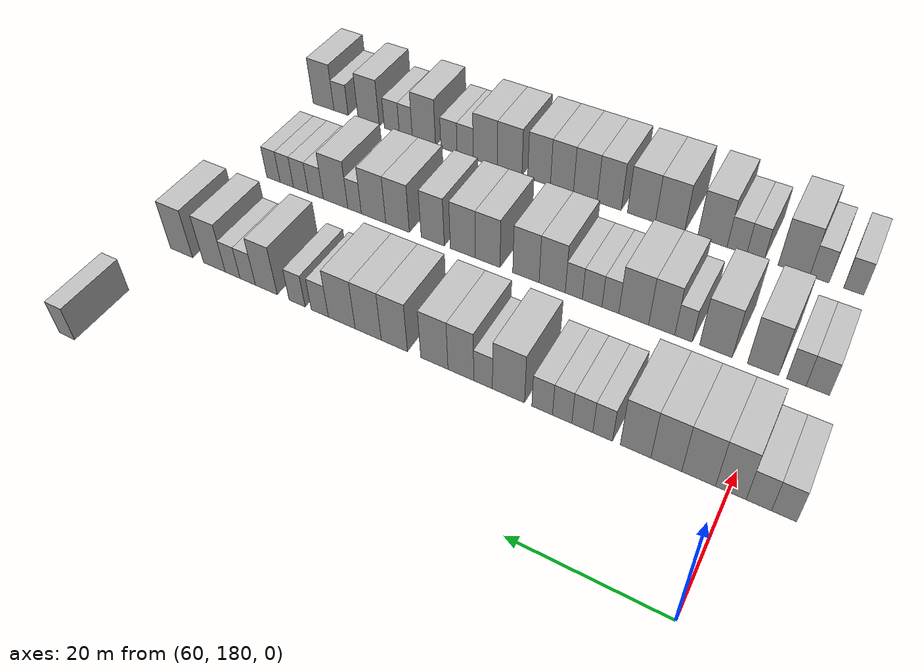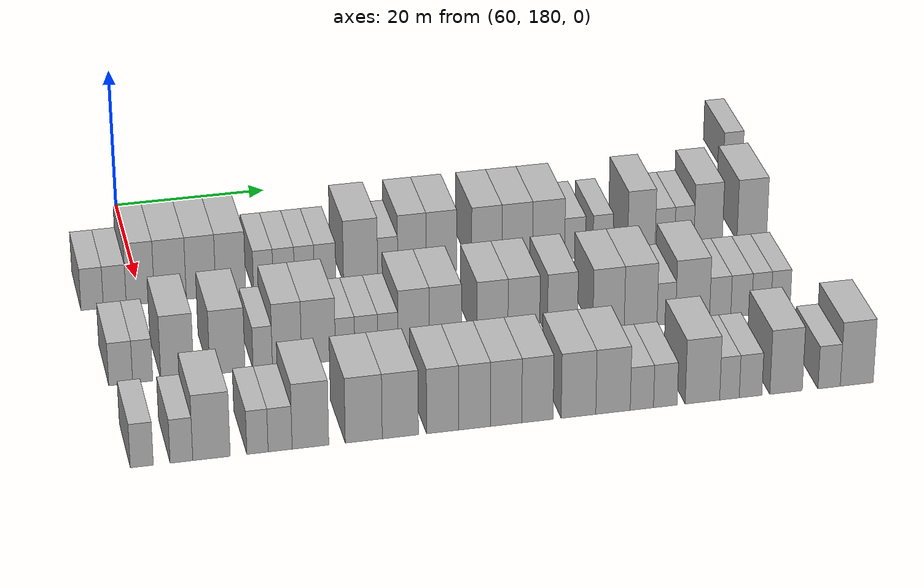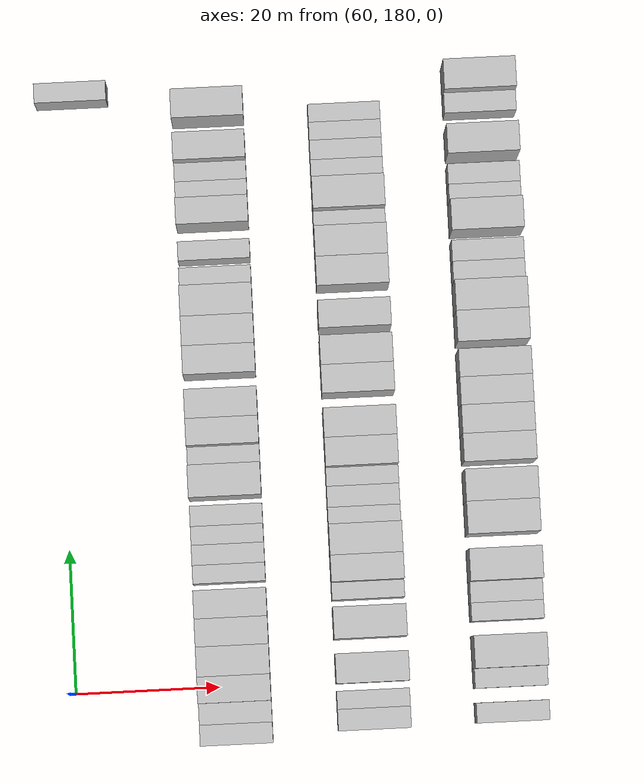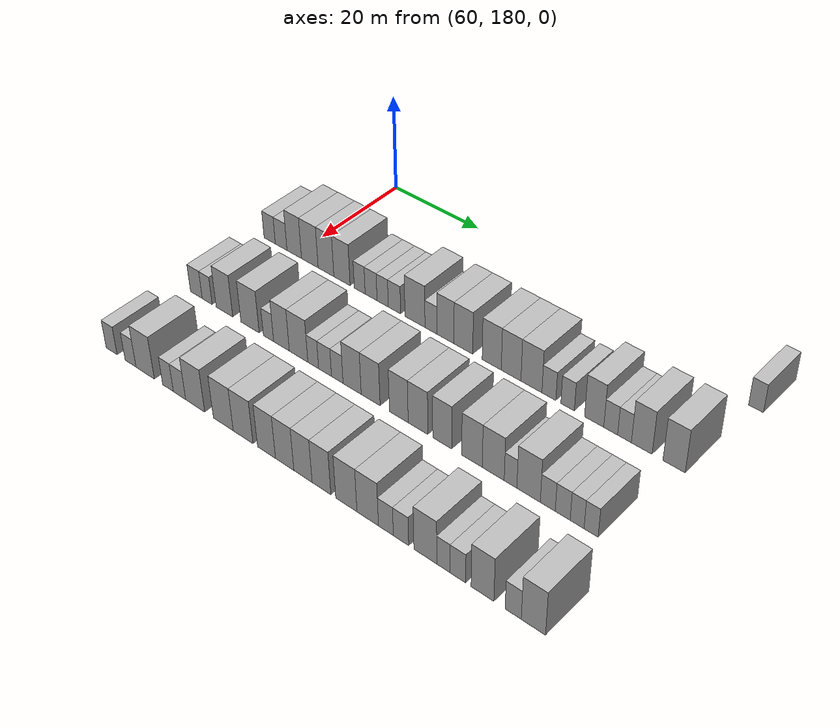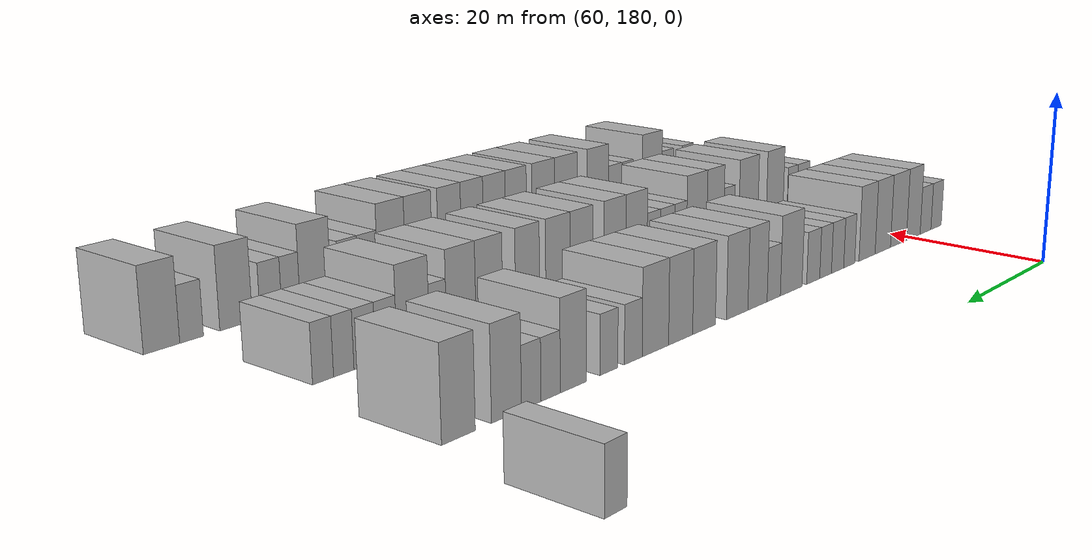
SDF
<sdf version="1.6">
 <world name="default">
  <model name="building_495">
   <static>1</static>
   <pose>63.0000 263.5589 0 0.000000 0.000000 0.000000</pose>
   <link name="link">
    <pose>0 0 3.00 0 0 0</pose>
    <collision name="collision"><geometry><box><size>10.0000 2.7407 6.0000</size></box></geometry></collision>
    <visual name="visual">
     <cast_shadows>0</cast_shadows>
     <geometry><box><size>10.0000 2.7407 6.0000</size></box></geometry>
     <material>
      <script>
       <uri>model://HANNAS_wall/materials/scripts</uri>
       <uri>model://HANNAS_wall/materials/textures</uri>
       <name>vrc/HANNAS_wall</name>
      </script>
     </material>
    </visual>
   </link>
  </model>
  <model name="building_655">
   <static>1</static>
   <pose>82.0000 173.5368 0 0.000000 0.000000 0.000000</pose>
   <link name="link">
    <pose>0 0 3.00 0 0 0</pose>
    <collision name="collision"><geometry><box><size>10.0000 2.8638 6.0000</size></box></geometry></collision>
    <visual name="visual">
     <cast_shadows>0</cast_shadows>
     <geometry><box><size>10.0000 2.8638 6.0000</size></box></geometry>
     <material>
      <script>
       <uri>model://HANNAS_wall/materials/scripts</uri>
       <uri>model://HANNAS_wall/materials/textures</uri>
       <name>vrc/HANNAS_wall</name>
      </script>
     </material>
    </visual>
   </link>
  </model>
  <model name="building_656">
   <static>1</static>
   <pose>82.0000 176.4345 0 0.000000 0.000000 0.000000</pose>
   <link name="link">
    <pose>0 0 3.00 0 0 0</pose>
    <collision name="collision"><geometry><box><size>10.0000 2.9318 6.0000</size></box></geometry></collision>
    <visual name="visual">
     <cast_shadows>0</cast_shadows>
     <geometry><box><size>10.0000 2.9318 6.0000</size></box></geometry>
     <material>
      <script>
       <uri>model://HANNAS_wall/materials/scripts</uri>
       <uri>model://HANNAS_wall/materials/textures</uri>
       <name>vrc/HANNAS_wall</name>
      </script>
     </material>
    </visual>
   </link>
  </model>
  <model name="building_657">
   <static>1</static>
   <pose>82.0000 179.7109 0 0.000000 0.000000 0.000000</pose>
   <link name="link">
    <pose>0 0 4.50 0 0 0</pose>
    <collision name="collision"><geometry><box><size>10.0000 3.6210 9.0000</size></box></geometry></collision>
    <visual name="visual">
     <cast_shadows>0</cast_shadows>
     <geometry><box><size>10.0000 3.6210 9.0000</size></box></geometry>
     <material>
      <script>
       <uri>model://HANNAS_wall/materials/scripts</uri>
       <uri>model://HANNAS_wall/materials/textures</uri>
       <name>vrc/HANNAS_wall</name>
      </script>
     </material>
    </visual>
   </link>
  </model>
  <model name="building_658">
   <static>1</static>
   <pose>82.0000 183.5634 0 0.000000 0.000000 0.000000</pose>
   <link name="link">
    <pose>0 0 4.50 0 0 0</pose>
    <collision name="collision"><geometry><box><size>10.0000 4.0839 9.0000</size></box></geometry></collision>
    <visual name="visual">
     <cast_shadows>0</cast_shadows>
     <geometry><box><size>10.0000 4.0839 9.0000</size></box></geometry>
     <material>
      <script>
       <uri>model://HANNAS_wall/materials/scripts</uri>
       <uri>model://HANNAS_wall/materials/textures</uri>
       <name>vrc/HANNAS_wall</name>
      </script>
     </material>
    </visual>
   </link>
  </model>
  <model name="building_659">
   <static>1</static>
   <pose>82.0000 187.5143 0 0.000000 0.000000 0.000000</pose>
   <link name="link">
    <pose>0 0 4.50 0 0 0</pose>
    <collision name="collision"><geometry><box><size>10.0000 3.8178 9.0000</size></box></geometry></collision>
    <visual name="visual">
     <cast_shadows>0</cast_shadows>
     <geometry><box><size>10.0000 3.8178 9.0000</size></box></geometry>
     <material>
      <script>
       <uri>model://HANNAS_wall/materials/scripts</uri>
       <uri>model://HANNAS_wall/materials/textures</uri>
       <name>vrc/HANNAS_wall</name>
      </script>
     </material>
    </visual>
   </link>
  </model>
  <model name="building_660">
   <static>1</static>
   <pose>82.0000 191.3612 0 0.000000 0.000000 0.000000</pose>
   <link name="link">
    <pose>0 0 4.50 0 0 0</pose>
    <collision name="collision"><geometry><box><size>10.0000 3.8759 9.0000</size></box></geometry></collision>
    <visual name="visual">
     <cast_shadows>0</cast_shadows>
     <geometry><box><size>10.0000 3.8759 9.0000</size></box></geometry>
     <material>
      <script>
       <uri>model://HANNAS_wall/materials/scripts</uri>
       <uri>model://HANNAS_wall/materials/textures</uri>
       <name>vrc/HANNAS_wall</name>
      </script>
     </material>
    </visual>
   </link>
  </model>
  <model name="building_661">
   <static>1</static>
   <pose>82.0000 195.5746 0 0.000000 0.000000 0.000000</pose>
   <link name="link">
    <pose>0 0 3.00 0 0 0</pose>
    <collision name="collision"><geometry><box><size>10.0000 2.5510 6.0000</size></box></geometry></collision>
    <visual name="visual">
     <cast_shadows>0</cast_shadows>
     <geometry><box><size>10.0000 2.5510 6.0000</size></box></geometry>
     <material>
      <script>
       <uri>model://HANNAS_wall/materials/scripts</uri>
       <uri>model://HANNAS_wall/materials/textures</uri>
       <name>vrc/HANNAS_wall</name>
      </script>
     </material>
    </visual>
   </link>
  </model>
  <model name="building_662">
   <static>1</static>
   <pose>82.0000 198.2391 0 0.000000 0.000000 0.000000</pose>
   <link name="link">
    <pose>0 0 3.00 0 0 0</pose>
    <collision name="collision"><geometry><box><size>10.0000 2.7780 6.0000</size></box></geometry></collision>
    <visual name="visual">
     <cast_shadows>0</cast_shadows>
     <geometry><box><size>10.0000 2.7780 6.0000</size></box></geometry>
     <material>
      <script>
       <uri>model://HANNAS_wall/materials/scripts</uri>
       <uri>model://HANNAS_wall/materials/textures</uri>
       <name>vrc/HANNAS_wall</name>
      </script>
     </material>
    </visual>
   </link>
  </model>
  <model name="building_663">
   <static>1</static>
   <pose>82.0000 200.9228 0 0.000000 0.000000 0.000000</pose>
   <link name="link">
    <pose>0 0 3.00 0 0 0</pose>
    <collision name="collision"><geometry><box><size>10.0000 2.5894 6.0000</size></box></geometry></collision>
    <visual name="visual">
     <cast_shadows>0</cast_shadows>
     <geometry><box><size>10.0000 2.5894 6.0000</size></box></geometry>
     <material>
      <script>
       <uri>model://HANNAS_wall/materials/scripts</uri>
       <uri>model://HANNAS_wall/materials/textures</uri>
       <name>vrc/HANNAS_wall</name>
      </script>
     </material>
    </visual>
   </link>
  </model>
  <model name="building_664">
   <static>1</static>
   <pose>82.0000 203.6237 0 0.000000 0.000000 0.000000</pose>
   <link name="link">
    <pose>0 0 3.00 0 0 0</pose>
    <collision name="collision"><geometry><box><size>10.0000 2.8124 6.0000</size></box></geometry></collision>
    <visual name="visual">
     <cast_shadows>0</cast_shadows>
     <geometry><box><size>10.0000 2.8124 6.0000</size></box></geometry>
     <material>
      <script>
       <uri>model://HANNAS_wall/materials/scripts</uri>
       <uri>model://HANNAS_wall/materials/textures</uri>
       <name>vrc/HANNAS_wall</name>
      </script>
     </material>
    </visual>
   </link>
  </model>
  <model name="building_665">
   <static>1</static>
   <pose>82.0000 208.2711 0 0.000000 0.000000 0.000000</pose>
   <link name="link">
    <pose>0 0 4.50 0 0 0</pose>
    <collision name="collision"><geometry><box><size>10.0000 4.4824 9.0000</size></box></geometry></collision>
    <visual name="visual">
     <cast_shadows>0</cast_shadows>
     <geometry><box><size>10.0000 4.4824 9.0000</size></box></geometry>
     <material>
      <script>
       <uri>model://HANNAS_wall/materials/scripts</uri>
       <uri>model://HANNAS_wall/materials/textures</uri>
       <name>vrc/HANNAS_wall</name>
      </script>
     </material>
    </visual>
   </link>
  </model>
  <model name="building_666">
   <static>1</static>
   <pose>82.0000 211.8379 0 0.000000 0.000000 0.000000</pose>
   <link name="link">
    <pose>0 0 3.00 0 0 0</pose>
    <collision name="collision"><geometry><box><size>10.0000 2.6511 6.0000</size></box></geometry></collision>
    <visual name="visual">
     <cast_shadows>0</cast_shadows>
     <geometry><box><size>10.0000 2.6511 6.0000</size></box></geometry>
     <material>
      <script>
       <uri>model://HANNAS_wall/materials/scripts</uri>
       <uri>model://HANNAS_wall/materials/textures</uri>
       <name>vrc/HANNAS_wall</name>
      </script>
     </material>
    </visual>
   </link>
  </model>
  <model name="building_667">
   <static>1</static>
   <pose>82.0000 215.0319 0 0.000000 0.000000 0.000000</pose>
   <link name="link">
    <pose>0 0 4.50 0 0 0</pose>
    <collision name="collision"><geometry><box><size>10.0000 3.7370 9.0000</size></box></geometry></collision>
    <visual name="visual">
     <cast_shadows>0</cast_shadows>
     <geometry><box><size>10.0000 3.7370 9.0000</size></box></geometry>
     <material>
      <script>
       <uri>model://HANNAS_wall/materials/scripts</uri>
       <uri>model://HANNAS_wall/materials/textures</uri>
       <name>vrc/HANNAS_wall</name>
      </script>
     </material>
    </visual>
   </link>
  </model>
  <model name="building_668">
   <static>1</static>
   <pose>82.0000 218.9185 0 0.000000 0.000000 0.000000</pose>
   <link name="link">
    <pose>0 0 4.50 0 0 0</pose>
    <collision name="collision"><geometry><box><size>10.0000 4.0363 9.0000</size></box></geometry></collision>
    <visual name="visual">
     <cast_shadows>0</cast_shadows>
     <geometry><box><size>10.0000 4.0363 9.0000</size></box></geometry>
     <material>
      <script>
       <uri>model://HANNAS_wall/materials/scripts</uri>
       <uri>model://HANNAS_wall/materials/textures</uri>
       <name>vrc/HANNAS_wall</name>
      </script>
     </material>
    </visual>
   </link>
  </model>
  <model name="building_669">
   <static>1</static>
   <pose>82.0000 224.9437 0 0.000000 0.000000 0.000000</pose>
   <link name="link">
    <pose>0 0 4.50 0 0 0</pose>
    <collision name="collision"><geometry><box><size>10.0000 4.0141 9.0000</size></box></geometry></collision>
    <visual name="visual">
     <cast_shadows>0</cast_shadows>
     <geometry><box><size>10.0000 4.0141 9.0000</size></box></geometry>
     <material>
      <script>
       <uri>model://HANNAS_wall/materials/scripts</uri>
       <uri>model://HANNAS_wall/materials/textures</uri>
       <name>vrc/HANNAS_wall</name>
      </script>
     </material>
    </visual>
   </link>
  </model>
  <model name="building_670">
   <static>1</static>
   <pose>82.0000 228.9920 0 0.000000 0.000000 0.000000</pose>
   <link name="link">
    <pose>0 0 4.50 0 0 0</pose>
    <collision name="collision"><geometry><box><size>10.0000 4.0824 9.0000</size></box></geometry></collision>
    <visual name="visual">
     <cast_shadows>0</cast_shadows>
     <geometry><box><size>10.0000 4.0824 9.0000</size></box></geometry>
     <material>
      <script>
       <uri>model://HANNAS_wall/materials/scripts</uri>
       <uri>model://HANNAS_wall/materials/textures</uri>
       <name>vrc/HANNAS_wall</name>
      </script>
     </material>
    </visual>
   </link>
  </model>
  <model name="building_671">
   <static>1</static>
   <pose>82.0000 233.1781 0 0.000000 0.000000 0.000000</pose>
   <link name="link">
    <pose>0 0 4.50 0 0 0</pose>
    <collision name="collision"><geometry><box><size>10.0000 4.2899 9.0000</size></box></geometry></collision>
    <visual name="visual">
     <cast_shadows>0</cast_shadows>
     <geometry><box><size>10.0000 4.2899 9.0000</size></box></geometry>
     <material>
      <script>
       <uri>model://HANNAS_wall/materials/scripts</uri>
       <uri>model://HANNAS_wall/materials/textures</uri>
       <name>vrc/HANNAS_wall</name>
      </script>
     </material>
    </visual>
   </link>
  </model>
  <model name="building_672">
   <static>1</static>
   <pose>82.0000 236.7222 0 0.000000 0.000000 0.000000</pose>
   <link name="link">
    <pose>0 0 3.00 0 0 0</pose>
    <collision name="collision"><geometry><box><size>10.0000 2.7982 6.0000</size></box></geometry></collision>
    <visual name="visual">
     <cast_shadows>0</cast_shadows>
     <geometry><box><size>10.0000 2.7982 6.0000</size></box></geometry>
     <material>
      <script>
       <uri>model://HANNAS_wall/materials/scripts</uri>
       <uri>model://HANNAS_wall/materials/textures</uri>
       <name>vrc/HANNAS_wall</name>
      </script>
     </material>
    </visual>
   </link>
  </model>
  <model name="building_673">
   <static>1</static>
   <pose>82.0000 240.4576 0 0.000000 0.000000 0.000000</pose>
   <link name="link">
    <pose>0 0 3.00 0 0 0</pose>
    <collision name="collision"><geometry><box><size>10.0000 2.6725 6.0000</size></box></geometry></collision>
    <visual name="visual">
     <cast_shadows>0</cast_shadows>
     <geometry><box><size>10.0000 2.6725 6.0000</size></box></geometry>
     <material>
      <script>
       <uri>model://HANNAS_wall/materials/scripts</uri>
       <uri>model://HANNAS_wall/materials/textures</uri>
       <name>vrc/HANNAS_wall</name>
      </script>
     </material>
    </visual>
   </link>
  </model>
  <model name="building_674">
   <static>1</static>
   <pose>82.0000 245.6570 0 0.000000 0.000000 0.000000</pose>
   <link name="link">
    <pose>0 0 4.50 0 0 0</pose>
    <collision name="collision"><geometry><box><size>10.0000 3.7263 9.0000</size></box></geometry></collision>
    <visual name="visual">
     <cast_shadows>0</cast_shadows>
     <geometry><box><size>10.0000 3.7263 9.0000</size></box></geometry>
     <material>
      <script>
       <uri>model://HANNAS_wall/materials/scripts</uri>
       <uri>model://HANNAS_wall/materials/textures</uri>
       <name>vrc/HANNAS_wall</name>
      </script>
     </material>
    </visual>
   </link>
  </model>
  <model name="building_675">
   <static>1</static>
   <pose>82.0000 248.8481 0 0.000000 0.000000 0.000000</pose>
   <link name="link">
    <pose>0 0 3.00 0 0 0</pose>
    <collision name="collision"><geometry><box><size>10.0000 2.6559 6.0000</size></box></geometry></collision>
    <visual name="visual">
     <cast_shadows>0</cast_shadows>
     <geometry><box><size>10.0000 2.6559 6.0000</size></box></geometry>
     <material>
      <script>
       <uri>model://HANNAS_wall/materials/scripts</uri>
       <uri>model://HANNAS_wall/materials/textures</uri>
       <name>vrc/HANNAS_wall</name>
      </script>
     </material>
    </visual>
   </link>
  </model>
  <model name="building_676">
   <static>1</static>
   <pose>82.0000 251.4793 0 0.000000 0.000000 0.000000</pose>
   <link name="link">
    <pose>0 0 3.00 0 0 0</pose>
    <collision name="collision"><geometry><box><size>10.0000 2.6065 6.0000</size></box></geometry></collision>
    <visual name="visual">
     <cast_shadows>0</cast_shadows>
     <geometry><box><size>10.0000 2.6065 6.0000</size></box></geometry>
     <material>
      <script>
       <uri>model://HANNAS_wall/materials/scripts</uri>
       <uri>model://HANNAS_wall/materials/textures</uri>
       <name>vrc/HANNAS_wall</name>
      </script>
     </material>
    </visual>
   </link>
  </model>
  <model name="building_677">
   <static>1</static>
   <pose>82.0000 254.7214 0 0.000000 0.000000 0.000000</pose>
   <link name="link">
    <pose>0 0 4.50 0 0 0</pose>
    <collision name="collision"><geometry><box><size>10.0000 3.8777 9.0000</size></box></geometry></collision>
    <visual name="visual">
     <cast_shadows>0</cast_shadows>
     <geometry><box><size>10.0000 3.8777 9.0000</size></box></geometry>
     <material>
      <script>
       <uri>model://HANNAS_wall/materials/scripts</uri>
       <uri>model://HANNAS_wall/materials/textures</uri>
       <name>vrc/HANNAS_wall</name>
      </script>
     </material>
    </visual>
   </link>
  </model>
  <model name="building_678">
   <static>1</static>
   <pose>82.0000 260.6910 0 0.000000 0.000000 0.000000</pose>
   <link name="link">
    <pose>0 0 4.50 0 0 0</pose>
    <collision name="collision"><geometry><box><size>10.0000 4.0614 9.0000</size></box></geometry></collision>
    <visual name="visual">
     <cast_shadows>0</cast_shadows>
     <geometry><box><size>10.0000 4.0614 9.0000</size></box></geometry>
     <material>
      <script>
       <uri>model://HANNAS_wall/materials/scripts</uri>
       <uri>model://HANNAS_wall/materials/textures</uri>
       <name>vrc/HANNAS_wall</name>
      </script>
     </material>
    </visual>
   </link>
  </model>
  <model name="building_838">
   <static>1</static>
   <pose>101.0000 174.7366 0 0.000000 0.000000 0.000000</pose>
   <link name="link">
    <pose>0 0 3.00 0 0 0</pose>
    <collision name="collision"><geometry><box><size>10.0000 2.9479 6.0000</size></box></geometry></collision>
    <visual name="visual">
     <cast_shadows>0</cast_shadows>
     <geometry><box><size>10.0000 2.9479 6.0000</size></box></geometry>
     <material>
      <script>
       <uri>model://HANNAS_wall/materials/scripts</uri>
       <uri>model://HANNAS_wall/materials/textures</uri>
       <name>vrc/HANNAS_wall</name>
      </script>
     </material>
    </visual>
   </link>
  </model>
  <model name="building_839">
   <static>1</static>
   <pose>101.0000 177.4515 0 0.000000 0.000000 0.000000</pose>
   <link name="link">
    <pose>0 0 3.00 0 0 0</pose>
    <collision name="collision"><geometry><box><size>10.0000 2.4819 6.0000</size></box></geometry></collision>
    <visual name="visual">
     <cast_shadows>0</cast_shadows>
     <geometry><box><size>10.0000 2.4819 6.0000</size></box></geometry>
     <material>
      <script>
       <uri>model://HANNAS_wall/materials/scripts</uri>
       <uri>model://HANNAS_wall/materials/textures</uri>
       <name>vrc/HANNAS_wall</name>
      </script>
     </material>
    </visual>
   </link>
  </model>
  <model name="building_840">
   <static>1</static>
   <pose>101.0000 181.7334 0 0.000000 0.000000 0.000000</pose>
   <link name="link">
    <pose>0 0 4.50 0 0 0</pose>
    <collision name="collision"><geometry><box><size>10.0000 4.0819 9.0000</size></box></geometry></collision>
    <visual name="visual">
     <cast_shadows>0</cast_shadows>
     <geometry><box><size>10.0000 4.0819 9.0000</size></box></geometry>
     <material>
      <script>
       <uri>model://HANNAS_wall/materials/scripts</uri>
       <uri>model://HANNAS_wall/materials/textures</uri>
       <name>vrc/HANNAS_wall</name>
      </script>
     </material>
    </visual>
   </link>
  </model>
  <model name="building_841">
   <static>1</static>
   <pose>101.0000 187.9698 0 0.000000 0.000000 0.000000</pose>
   <link name="link">
    <pose>0 0 4.50 0 0 0</pose>
    <collision name="collision"><geometry><box><size>10.0000 4.3911 9.0000</size></box></geometry></collision>
    <visual name="visual">
     <cast_shadows>0</cast_shadows>
     <geometry><box><size>10.0000 4.3911 9.0000</size></box></geometry>
     <material>
      <script>
       <uri>model://HANNAS_wall/materials/scripts</uri>
       <uri>model://HANNAS_wall/materials/textures</uri>
       <name>vrc/HANNAS_wall</name>
      </script>
     </material>
    </visual>
   </link>
  </model>
  <model name="building_842">
   <static>1</static>
   <pose>101.0000 192.3719 0 0.000000 0.000000 0.000000</pose>
   <link name="link">
    <pose>0 0 3.00 0 0 0</pose>
    <collision name="collision"><geometry><box><size>10.0000 2.4131 6.0000</size></box></geometry></collision>
    <visual name="visual">
     <cast_shadows>0</cast_shadows>
     <geometry><box><size>10.0000 2.4131 6.0000</size></box></geometry>
     <material>
      <script>
       <uri>model://HANNAS_wall/materials/scripts</uri>
       <uri>model://HANNAS_wall/materials/textures</uri>
       <name>vrc/HANNAS_wall</name>
      </script>
     </material>
    </visual>
   </link>
  </model>
  <model name="building_843">
   <static>1</static>
   <pose>101.0000 195.4111 0 0.000000 0.000000 0.000000</pose>
   <link name="link">
    <pose>0 0 4.50 0 0 0</pose>
    <collision name="collision"><geometry><box><size>10.0000 3.6652 9.0000</size></box></geometry></collision>
    <visual name="visual">
     <cast_shadows>0</cast_shadows>
     <geometry><box><size>10.0000 3.6652 9.0000</size></box></geometry>
     <material>
      <script>
       <uri>model://HANNAS_wall/materials/scripts</uri>
       <uri>model://HANNAS_wall/materials/textures</uri>
       <name>vrc/HANNAS_wall</name>
      </script>
     </material>
    </visual>
   </link>
  </model>
  <model name="building_844">
   <static>1</static>
   <pose>101.0000 199.3735 0 0.000000 0.000000 0.000000</pose>
   <link name="link">
    <pose>0 0 4.50 0 0 0</pose>
    <collision name="collision"><geometry><box><size>10.0000 4.2596 9.0000</size></box></geometry></collision>
    <visual name="visual">
     <cast_shadows>0</cast_shadows>
     <geometry><box><size>10.0000 4.2596 9.0000</size></box></geometry>
     <material>
      <script>
       <uri>model://HANNAS_wall/materials/scripts</uri>
       <uri>model://HANNAS_wall/materials/textures</uri>
       <name>vrc/HANNAS_wall</name>
      </script>
     </material>
    </visual>
   </link>
  </model>
  <model name="building_845">
   <static>1</static>
   <pose>101.0000 202.7245 0 0.000000 0.000000 0.000000</pose>
   <link name="link">
    <pose>0 0 3.00 0 0 0</pose>
    <collision name="collision"><geometry><box><size>10.0000 2.4424 6.0000</size></box></geometry></collision>
    <visual name="visual">
     <cast_shadows>0</cast_shadows>
     <geometry><box><size>10.0000 2.4424 6.0000</size></box></geometry>
     <material>
      <script>
       <uri>model://HANNAS_wall/materials/scripts</uri>
       <uri>model://HANNAS_wall/materials/textures</uri>
       <name>vrc/HANNAS_wall</name>
      </script>
     </material>
    </visual>
   </link>
  </model>
  <model name="building_846">
   <static>1</static>
   <pose>101.0000 205.3953 0 0.000000 0.000000 0.000000</pose>
   <link name="link">
    <pose>0 0 3.00 0 0 0</pose>
    <collision name="collision"><geometry><box><size>10.0000 2.8993 6.0000</size></box></geometry></collision>
    <visual name="visual">
     <cast_shadows>0</cast_shadows>
     <geometry><box><size>10.0000 2.8993 6.0000</size></box></geometry>
     <material>
      <script>
       <uri>model://HANNAS_wall/materials/scripts</uri>
       <uri>model://HANNAS_wall/materials/textures</uri>
       <name>vrc/HANNAS_wall</name>
      </script>
     </material>
    </visual>
   </link>
  </model>
  <model name="building_847">
   <static>1</static>
   <pose>101.0000 208.1288 0 0.000000 0.000000 0.000000</pose>
   <link name="link">
    <pose>0 0 3.00 0 0 0</pose>
    <collision name="collision"><geometry><box><size>10.0000 2.5678 6.0000</size></box></geometry></collision>
    <visual name="visual">
     <cast_shadows>0</cast_shadows>
     <geometry><box><size>10.0000 2.5678 6.0000</size></box></geometry>
     <material>
      <script>
       <uri>model://HANNAS_wall/materials/scripts</uri>
       <uri>model://HANNAS_wall/materials/textures</uri>
       <name>vrc/HANNAS_wall</name>
      </script>
     </material>
    </visual>
   </link>
  </model>
  <model name="building_848">
   <static>1</static>
   <pose>101.0000 211.4029 0 0.000000 0.000000 0.000000</pose>
   <link name="link">
    <pose>0 0 4.50 0 0 0</pose>
    <collision name="collision"><geometry><box><size>10.0000 3.9802 9.0000</size></box></geometry></collision>
    <visual name="visual">
     <cast_shadows>0</cast_shadows>
     <geometry><box><size>10.0000 3.9802 9.0000</size></box></geometry>
     <material>
      <script>
       <uri>model://HANNAS_wall/materials/scripts</uri>
       <uri>model://HANNAS_wall/materials/textures</uri>
       <name>vrc/HANNAS_wall</name>
      </script>
     </material>
    </visual>
   </link>
  </model>
  <model name="building_849">
   <static>1</static>
   <pose>101.0000 215.4329 0 0.000000 0.000000 0.000000</pose>
   <link name="link">
    <pose>0 0 4.50 0 0 0</pose>
    <collision name="collision"><geometry><box><size>10.0000 4.0798 9.0000</size></box></geometry></collision>
    <visual name="visual">
     <cast_shadows>0</cast_shadows>
     <geometry><box><size>10.0000 4.0798 9.0000</size></box></geometry>
     <material>
      <script>
       <uri>model://HANNAS_wall/materials/scripts</uri>
       <uri>model://HANNAS_wall/materials/textures</uri>
       <name>vrc/HANNAS_wall</name>
      </script>
     </material>
    </visual>
   </link>
  </model>
  <model name="building_850">
   <static>1</static>
   <pose>101.0000 221.4456 0 0.000000 0.000000 0.000000</pose>
   <link name="link">
    <pose>0 0 4.50 0 0 0</pose>
    <collision name="collision"><geometry><box><size>10.0000 3.9456 9.0000</size></box></geometry></collision>
    <visual name="visual">
     <cast_shadows>0</cast_shadows>
     <geometry><box><size>10.0000 3.9456 9.0000</size></box></geometry>
     <material>
      <script>
       <uri>model://HANNAS_wall/materials/scripts</uri>
       <uri>model://HANNAS_wall/materials/textures</uri>
       <name>vrc/HANNAS_wall</name>
      </script>
     </material>
    </visual>
   </link>
  </model>
  <model name="building_851">
   <static>1</static>
   <pose>101.0000 225.4594 0 0.000000 0.000000 0.000000</pose>
   <link name="link">
    <pose>0 0 4.50 0 0 0</pose>
    <collision name="collision"><geometry><box><size>10.0000 4.0819 9.0000</size></box></geometry></collision>
    <visual name="visual">
     <cast_shadows>0</cast_shadows>
     <geometry><box><size>10.0000 4.0819 9.0000</size></box></geometry>
     <material>
      <script>
       <uri>model://HANNAS_wall/materials/scripts</uri>
       <uri>model://HANNAS_wall/materials/textures</uri>
       <name>vrc/HANNAS_wall</name>
      </script>
     </material>
    </visual>
   </link>
  </model>
  <model name="building_852">
   <static>1</static>
   <pose>101.0000 230.4360 0 0.000000 0.000000 0.000000</pose>
   <link name="link">
    <pose>0 0 4.50 0 0 0</pose>
    <collision name="collision"><geometry><box><size>10.0000 3.8715 9.0000</size></box></geometry></collision>
    <visual name="visual">
     <cast_shadows>0</cast_shadows>
     <geometry><box><size>10.0000 3.8715 9.0000</size></box></geometry>
     <material>
      <script>
       <uri>model://HANNAS_wall/materials/scripts</uri>
       <uri>model://HANNAS_wall/materials/textures</uri>
       <name>vrc/HANNAS_wall</name>
      </script>
     </material>
    </visual>
   </link>
  </model>
  <model name="building_853">
   <static>1</static>
   <pose>101.0000 236.4062 0 0.000000 0.000000 0.000000</pose>
   <link name="link">
    <pose>0 0 4.50 0 0 0</pose>
    <collision name="collision"><geometry><box><size>10.0000 4.0689 9.0000</size></box></geometry></collision>
    <visual name="visual">
     <cast_shadows>0</cast_shadows>
     <geometry><box><size>10.0000 4.0689 9.0000</size></box></geometry>
     <material>
      <script>
       <uri>model://HANNAS_wall/materials/scripts</uri>
       <uri>model://HANNAS_wall/materials/textures</uri>
       <name>vrc/HANNAS_wall</name>
      </script>
     </material>
    </visual>
   </link>
  </model>
  <model name="building_854">
   <static>1</static>
   <pose>101.0000 240.5775 0 0.000000 0.000000 0.000000</pose>
   <link name="link">
    <pose>0 0 4.50 0 0 0</pose>
    <collision name="collision"><geometry><box><size>10.0000 4.2736 9.0000</size></box></geometry></collision>
    <visual name="visual">
     <cast_shadows>0</cast_shadows>
     <geometry><box><size>10.0000 4.2736 9.0000</size></box></geometry>
     <material>
      <script>
       <uri>model://HANNAS_wall/materials/scripts</uri>
       <uri>model://HANNAS_wall/materials/textures</uri>
       <name>vrc/HANNAS_wall</name>
      </script>
     </material>
    </visual>
   </link>
  </model>
  <model name="building_855">
   <static>1</static>
   <pose>101.0000 243.9262 0 0.000000 0.000000 0.000000</pose>
   <link name="link">
    <pose>0 0 3.00 0 0 0</pose>
    <collision name="collision"><geometry><box><size>10.0000 2.4239 6.0000</size></box></geometry></collision>
    <visual name="visual">
     <cast_shadows>0</cast_shadows>
     <geometry><box><size>10.0000 2.4239 6.0000</size></box></geometry>
     <material>
      <script>
       <uri>model://HANNAS_wall/materials/scripts</uri>
       <uri>model://HANNAS_wall/materials/textures</uri>
       <name>vrc/HANNAS_wall</name>
      </script>
     </material>
    </visual>
   </link>
  </model>
  <model name="building_856">
   <static>1</static>
   <pose>101.0000 247.3592 0 0.000000 0.000000 0.000000</pose>
   <link name="link">
    <pose>0 0 4.50 0 0 0</pose>
    <collision name="collision"><geometry><box><size>10.0000 4.4421 9.0000</size></box></geometry></collision>
    <visual name="visual">
     <cast_shadows>0</cast_shadows>
     <geometry><box><size>10.0000 4.4421 9.0000</size></box></geometry>
     <material>
      <script>
       <uri>model://HANNAS_wall/materials/scripts</uri>
       <uri>model://HANNAS_wall/materials/textures</uri>
       <name>vrc/HANNAS_wall</name>
      </script>
     </material>
    </visual>
   </link>
  </model>
  <model name="building_857">
   <static>1</static>
   <pose>101.0000 250.9753 0 0.000000 0.000000 0.000000</pose>
   <link name="link">
    <pose>0 0 3.00 0 0 0</pose>
    <collision name="collision"><geometry><box><size>10.0000 2.7900 6.0000</size></box></geometry></collision>
    <visual name="visual">
     <cast_shadows>0</cast_shadows>
     <geometry><box><size>10.0000 2.7900 6.0000</size></box></geometry>
     <material>
      <script>
       <uri>model://HANNAS_wall/materials/scripts</uri>
       <uri>model://HANNAS_wall/materials/textures</uri>
       <name>vrc/HANNAS_wall</name>
      </script>
     </material>
    </visual>
   </link>
  </model>
  <model name="building_858">
   <static>1</static>
   <pose>101.0000 253.7475 0 0.000000 0.000000 0.000000</pose>
   <link name="link">
    <pose>0 0 3.00 0 0 0</pose>
    <collision name="collision"><geometry><box><size>10.0000 2.7544 6.0000</size></box></geometry></collision>
    <visual name="visual">
     <cast_shadows>0</cast_shadows>
     <geometry><box><size>10.0000 2.7544 6.0000</size></box></geometry>
     <material>
      <script>
       <uri>model://HANNAS_wall/materials/scripts</uri>
       <uri>model://HANNAS_wall/materials/textures</uri>
       <name>vrc/HANNAS_wall</name>
      </script>
     </material>
    </visual>
   </link>
  </model>
  <model name="building_859">
   <static>1</static>
   <pose>101.0000 256.3906 0 0.000000 0.000000 0.000000</pose>
   <link name="link">
    <pose>0 0 3.00 0 0 0</pose>
    <collision name="collision"><geometry><box><size>10.0000 2.5318 6.0000</size></box></geometry></collision>
    <visual name="visual">
     <cast_shadows>0</cast_shadows>
     <geometry><box><size>10.0000 2.5318 6.0000</size></box></geometry>
     <material>
      <script>
       <uri>model://HANNAS_wall/materials/scripts</uri>
       <uri>model://HANNAS_wall/materials/textures</uri>
       <name>vrc/HANNAS_wall</name>
      </script>
     </material>
    </visual>
   </link>
  </model>
  <model name="building_860">
   <static>1</static>
   <pose>101.0000 258.9217 0 0.000000 0.000000 0.000000</pose>
   <link name="link">
    <pose>0 0 3.00 0 0 0</pose>
    <collision name="collision"><geometry><box><size>10.0000 2.5305 6.0000</size></box></geometry></collision>
    <visual name="visual">
     <cast_shadows>0</cast_shadows>
     <geometry><box><size>10.0000 2.5305 6.0000</size></box></geometry>
     <material>
      <script>
       <uri>model://HANNAS_wall/materials/scripts</uri>
       <uri>model://HANNAS_wall/materials/textures</uri>
       <name>vrc/HANNAS_wall</name>
      </script>
     </material>
    </visual>
   </link>
  </model>
  <model name="building_1014">
   <static>1</static>
   <pose>120.0000 174.7847 0 0.000000 0.000000 0.000000</pose>
   <link name="link">
    <pose>0 0 3.00 0 0 0</pose>
    <collision name="collision"><geometry><box><size>10.0000 2.7406 6.0000</size></box></geometry></collision>
    <visual name="visual">
     <cast_shadows>0</cast_shadows>
     <geometry><box><size>10.0000 2.7406 6.0000</size></box></geometry>
     <material>
      <script>
       <uri>model://HANNAS_wall/materials/scripts</uri>
       <uri>model://HANNAS_wall/materials/textures</uri>
       <name>vrc/HANNAS_wall</name>
      </script>
     </material>
    </visual>
   </link>
  </model>
  <model name="building_1015">
   <static>1</static>
   <pose>120.0000 179.5069 0 0.000000 0.000000 0.000000</pose>
   <link name="link">
    <pose>0 0 3.00 0 0 0</pose>
    <collision name="collision"><geometry><box><size>10.0000 2.7037 6.0000</size></box></geometry></collision>
    <visual name="visual">
     <cast_shadows>0</cast_shadows>
     <geometry><box><size>10.0000 2.7037 6.0000</size></box></geometry>
     <material>
      <script>
       <uri>model://HANNAS_wall/materials/scripts</uri>
       <uri>model://HANNAS_wall/materials/textures</uri>
       <name>vrc/HANNAS_wall</name>
      </script>
     </material>
    </visual>
   </link>
  </model>
  <model name="building_1016">
   <static>1</static>
   <pose>120.0000 183.0952 0 0.000000 0.000000 0.000000</pose>
   <link name="link">
    <pose>0 0 4.50 0 0 0</pose>
    <collision name="collision"><geometry><box><size>10.0000 4.4730 9.0000</size></box></geometry></collision>
    <visual name="visual">
     <cast_shadows>0</cast_shadows>
     <geometry><box><size>10.0000 4.4730 9.0000</size></box></geometry>
     <material>
      <script>
       <uri>model://HANNAS_wall/materials/scripts</uri>
       <uri>model://HANNAS_wall/materials/textures</uri>
       <name>vrc/HANNAS_wall</name>
      </script>
     </material>
    </visual>
   </link>
  </model>
  <model name="building_1017">
   <static>1</static>
   <pose>120.0000 188.6051 0 0.000000 0.000000 0.000000</pose>
   <link name="link">
    <pose>0 0 3.00 0 0 0</pose>
    <collision name="collision"><geometry><box><size>10.0000 2.5469 6.0000</size></box></geometry></collision>
    <visual name="visual">
     <cast_shadows>0</cast_shadows>
     <geometry><box><size>10.0000 2.5469 6.0000</size></box></geometry>
     <material>
      <script>
       <uri>model://HANNAS_wall/materials/scripts</uri>
       <uri>model://HANNAS_wall/materials/textures</uri>
       <name>vrc/HANNAS_wall</name>
      </script>
     </material>
    </visual>
   </link>
  </model>
  <model name="building_1018">
   <static>1</static>
   <pose>120.0000 191.3280 0 0.000000 0.000000 0.000000</pose>
   <link name="link">
    <pose>0 0 3.00 0 0 0</pose>
    <collision name="collision"><geometry><box><size>10.0000 2.8988 6.0000</size></box></geometry></collision>
    <visual name="visual">
     <cast_shadows>0</cast_shadows>
     <geometry><box><size>10.0000 2.8988 6.0000</size></box></geometry>
     <material>
      <script>
       <uri>model://HANNAS_wall/materials/scripts</uri>
       <uri>model://HANNAS_wall/materials/textures</uri>
       <name>vrc/HANNAS_wall</name>
      </script>
     </material>
    </visual>
   </link>
  </model>
  <model name="building_1019">
   <static>1</static>
   <pose>120.0000 194.9928 0 0.000000 0.000000 0.000000</pose>
   <link name="link">
    <pose>0 0 4.50 0 0 0</pose>
    <collision name="collision"><geometry><box><size>10.0000 4.4309 9.0000</size></box></geometry></collision>
    <visual name="visual">
     <cast_shadows>0</cast_shadows>
     <geometry><box><size>10.0000 4.4309 9.0000</size></box></geometry>
     <material>
      <script>
       <uri>model://HANNAS_wall/materials/scripts</uri>
       <uri>model://HANNAS_wall/materials/textures</uri>
       <name>vrc/HANNAS_wall</name>
      </script>
     </material>
    </visual>
   </link>
  </model>
  <model name="building_1020">
   <static>1</static>
   <pose>120.0000 201.4542 0 0.000000 0.000000 0.000000</pose>
   <link name="link">
    <pose>0 0 4.50 0 0 0</pose>
    <collision name="collision"><geometry><box><size>10.0000 4.4920 9.0000</size></box></geometry></collision>
    <visual name="visual">
     <cast_shadows>0</cast_shadows>
     <geometry><box><size>10.0000 4.4920 9.0000</size></box></geometry>
     <material>
      <script>
       <uri>model://HANNAS_wall/materials/scripts</uri>
       <uri>model://HANNAS_wall/materials/textures</uri>
       <name>vrc/HANNAS_wall</name>
      </script>
     </material>
    </visual>
   </link>
  </model>
  <model name="building_1021">
   <static>1</static>
   <pose>120.0000 205.9082 0 0.000000 0.000000 0.000000</pose>
   <link name="link">
    <pose>0 0 4.50 0 0 0</pose>
    <collision name="collision"><geometry><box><size>10.0000 4.4160 9.0000</size></box></geometry></collision>
    <visual name="visual">
     <cast_shadows>0</cast_shadows>
     <geometry><box><size>10.0000 4.4160 9.0000</size></box></geometry>
     <material>
      <script>
       <uri>model://HANNAS_wall/materials/scripts</uri>
       <uri>model://HANNAS_wall/materials/textures</uri>
       <name>vrc/HANNAS_wall</name>
      </script>
     </material>
    </visual>
   </link>
  </model>
  <model name="building_1022">
   <static>1</static>
   <pose>120.0000 211.0697 0 0.000000 0.000000 0.000000</pose>
   <link name="link">
    <pose>0 0 4.50 0 0 0</pose>
    <collision name="collision"><geometry><box><size>10.0000 3.9070 9.0000</size></box></geometry></collision>
    <visual name="visual">
     <cast_shadows>0</cast_shadows>
     <geometry><box><size>10.0000 3.9070 9.0000</size></box></geometry>
     <material>
      <script>
       <uri>model://HANNAS_wall/materials/scripts</uri>
       <uri>model://HANNAS_wall/materials/textures</uri>
       <name>vrc/HANNAS_wall</name>
      </script>
     </material>
    </visual>
   </link>
  </model>
  <model name="building_1023">
   <static>1</static>
   <pose>120.0000 214.9930 0 0.000000 0.000000 0.000000</pose>
   <link name="link">
    <pose>0 0 4.50 0 0 0</pose>
    <collision name="collision"><geometry><box><size>10.0000 3.9397 9.0000</size></box></geometry></collision>
    <visual name="visual">
     <cast_shadows>0</cast_shadows>
     <geometry><box><size>10.0000 3.9397 9.0000</size></box></geometry>
     <material>
      <script>
       <uri>model://HANNAS_wall/materials/scripts</uri>
       <uri>model://HANNAS_wall/materials/textures</uri>
       <name>vrc/HANNAS_wall</name>
      </script>
     </material>
    </visual>
   </link>
  </model>
  <model name="building_1024">
   <static>1</static>
   <pose>120.0000 218.8876 0 0.000000 0.000000 0.000000</pose>
   <link name="link">
    <pose>0 0 4.50 0 0 0</pose>
    <collision name="collision"><geometry><box><size>10.0000 3.8494 9.0000</size></box></geometry></collision>
    <visual name="visual">
     <cast_shadows>0</cast_shadows>
     <geometry><box><size>10.0000 3.8494 9.0000</size></box></geometry>
     <material>
      <script>
       <uri>model://HANNAS_wall/materials/scripts</uri>
       <uri>model://HANNAS_wall/materials/textures</uri>
       <name>vrc/HANNAS_wall</name>
      </script>
     </material>
    </visual>
   </link>
  </model>
  <model name="building_1025">
   <static>1</static>
   <pose>120.0000 222.7535 0 0.000000 0.000000 0.000000</pose>
   <link name="link">
    <pose>0 0 4.50 0 0 0</pose>
    <collision name="collision"><geometry><box><size>10.0000 3.8825 9.0000</size></box></geometry></collision>
    <visual name="visual">
     <cast_shadows>0</cast_shadows>
     <geometry><box><size>10.0000 3.8825 9.0000</size></box></geometry>
     <material>
      <script>
       <uri>model://HANNAS_wall/materials/scripts</uri>
       <uri>model://HANNAS_wall/materials/textures</uri>
       <name>vrc/HANNAS_wall</name>
      </script>
     </material>
    </visual>
   </link>
  </model>
  <model name="building_1026">
   <static>1</static>
   <pose>120.0000 227.8498 0 0.000000 0.000000 0.000000</pose>
   <link name="link">
    <pose>0 0 4.50 0 0 0</pose>
    <collision name="collision"><geometry><box><size>10.0000 4.3101 9.0000</size></box></geometry></collision>
    <visual name="visual">
     <cast_shadows>0</cast_shadows>
     <geometry><box><size>10.0000 4.3101 9.0000</size></box></geometry>
     <material>
      <script>
       <uri>model://HANNAS_wall/materials/scripts</uri>
       <uri>model://HANNAS_wall/materials/textures</uri>
       <name>vrc/HANNAS_wall</name>
      </script>
     </material>
    </visual>
   </link>
  </model>
  <model name="building_1027">
   <static>1</static>
   <pose>120.0000 232.1500 0 0.000000 0.000000 0.000000</pose>
   <link name="link">
    <pose>0 0 4.50 0 0 0</pose>
    <collision name="collision"><geometry><box><size>10.0000 4.2902 9.0000</size></box></geometry></collision>
    <visual name="visual">
     <cast_shadows>0</cast_shadows>
     <geometry><box><size>10.0000 4.2902 9.0000</size></box></geometry>
     <material>
      <script>
       <uri>model://HANNAS_wall/materials/scripts</uri>
       <uri>model://HANNAS_wall/materials/textures</uri>
       <name>vrc/HANNAS_wall</name>
      </script>
     </material>
    </visual>
   </link>
  </model>
  <model name="building_1028">
   <static>1</static>
   <pose>120.0000 235.7547 0 0.000000 0.000000 0.000000</pose>
   <link name="link">
    <pose>0 0 3.00 0 0 0</pose>
    <collision name="collision"><geometry><box><size>10.0000 2.9192 6.0000</size></box></geometry></collision>
    <visual name="visual">
     <cast_shadows>0</cast_shadows>
     <geometry><box><size>10.0000 2.9192 6.0000</size></box></geometry>
     <material>
      <script>
       <uri>model://HANNAS_wall/materials/scripts</uri>
       <uri>model://HANNAS_wall/materials/textures</uri>
       <name>vrc/HANNAS_wall</name>
      </script>
     </material>
    </visual>
   </link>
  </model>
  <model name="building_1029">
   <static>1</static>
   <pose>120.0000 238.7000 0 0.000000 0.000000 0.000000</pose>
   <link name="link">
    <pose>0 0 3.00 0 0 0</pose>
    <collision name="collision"><geometry><box><size>10.0000 2.9715 6.0000</size></box></geometry></collision>
    <visual name="visual">
     <cast_shadows>0</cast_shadows>
     <geometry><box><size>10.0000 2.9715 6.0000</size></box></geometry>
     <material>
      <script>
       <uri>model://HANNAS_wall/materials/scripts</uri>
       <uri>model://HANNAS_wall/materials/textures</uri>
       <name>vrc/HANNAS_wall</name>
      </script>
     </material>
    </visual>
   </link>
  </model>
  <model name="building_1030">
   <static>1</static>
   <pose>120.0000 243.3605 0 0.000000 0.000000 0.000000</pose>
   <link name="link">
    <pose>0 0 4.50 0 0 0</pose>
    <collision name="collision"><geometry><box><size>10.0000 4.3495 9.0000</size></box></geometry></collision>
    <visual name="visual">
     <cast_shadows>0</cast_shadows>
     <geometry><box><size>10.0000 4.3495 9.0000</size></box></geometry>
     <material>
      <script>
       <uri>model://HANNAS_wall/materials/scripts</uri>
       <uri>model://HANNAS_wall/materials/textures</uri>
       <name>vrc/HANNAS_wall</name>
      </script>
     </material>
    </visual>
   </link>
  </model>
  <model name="building_1031">
   <static>1</static>
   <pose>120.0000 246.7755 0 0.000000 0.000000 0.000000</pose>
   <link name="link">
    <pose>0 0 3.00 0 0 0</pose>
    <collision name="collision"><geometry><box><size>10.0000 2.4803 6.0000</size></box></geometry></collision>
    <visual name="visual">
     <cast_shadows>0</cast_shadows>
     <geometry><box><size>10.0000 2.4803 6.0000</size></box></geometry>
     <material>
      <script>
       <uri>model://HANNAS_wall/materials/scripts</uri>
       <uri>model://HANNAS_wall/materials/textures</uri>
       <name>vrc/HANNAS_wall</name>
      </script>
     </material>
    </visual>
   </link>
  </model>
  <model name="building_1032">
   <static>1</static>
   <pose>120.0000 249.4508 0 0.000000 0.000000 0.000000</pose>
   <link name="link">
    <pose>0 0 3.00 0 0 0</pose>
    <collision name="collision"><geometry><box><size>10.0000 2.8703 6.0000</size></box></geometry></collision>
    <visual name="visual">
     <cast_shadows>0</cast_shadows>
     <geometry><box><size>10.0000 2.8703 6.0000</size></box></geometry>
     <material>
      <script>
       <uri>model://HANNAS_wall/materials/scripts</uri>
       <uri>model://HANNAS_wall/materials/textures</uri>
       <name>vrc/HANNAS_wall</name>
      </script>
     </material>
    </visual>
   </link>
  </model>
  <model name="building_1033">
   <static>1</static>
   <pose>120.0000 253.9519 0 0.000000 0.000000 0.000000</pose>
   <link name="link">
    <pose>0 0 4.50 0 0 0</pose>
    <collision name="collision"><geometry><box><size>10.0000 4.1319 9.0000</size></box></geometry></collision>
    <visual name="visual">
     <cast_shadows>0</cast_shadows>
     <geometry><box><size>10.0000 4.1319 9.0000</size></box></geometry>
     <material>
      <script>
       <uri>model://HANNAS_wall/materials/scripts</uri>
       <uri>model://HANNAS_wall/materials/textures</uri>
       <name>vrc/HANNAS_wall</name>
      </script>
     </material>
    </visual>
   </link>
  </model>
  <model name="building_1034">
   <static>1</static>
   <pose>120.0000 259.4420 0 0.000000 0.000000 0.000000</pose>
   <link name="link">
    <pose>0 0 3.00 0 0 0</pose>
    <collision name="collision"><geometry><box><size>10.0000 2.8485 6.0000</size></box></geometry></collision>
    <visual name="visual">
     <cast_shadows>0</cast_shadows>
     <geometry><box><size>10.0000 2.8485 6.0000</size></box></geometry>
     <material>
      <script>
       <uri>model://HANNAS_wall/materials/scripts</uri>
       <uri>model://HANNAS_wall/materials/textures</uri>
       <name>vrc/HANNAS_wall</name>
      </script>
     </material>
    </visual>
   </link>
  </model>
  <model name="building_1035">
   <static>1</static>
   <pose>120.0000 262.9777 0 0.000000 0.000000 0.000000</pose>
   <link name="link">
    <pose>0 0 4.50 0 0 0</pose>
    <collision name="collision"><geometry><box><size>10.0000 4.2228 9.0000</size></box></geometry></collision>
    <visual name="visual">
     <cast_shadows>0</cast_shadows>
     <geometry><box><size>10.0000 4.2228 9.0000</size></box></geometry>
     <material>
      <script>
       <uri>model://HANNAS_wall/materials/scripts</uri>
       <uri>model://HANNAS_wall/materials/textures</uri>
       <name>vrc/HANNAS_wall</name>
      </script>
     </material>
    </visual>
   </link>
  </model>
 </world>
</sdf>
